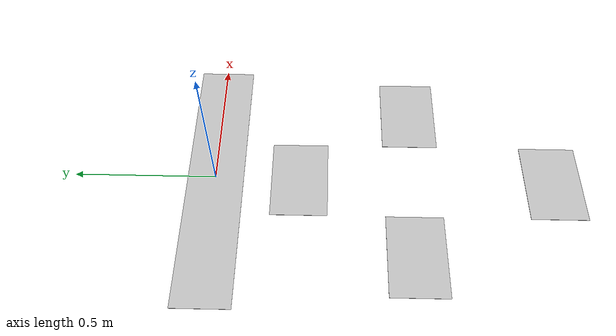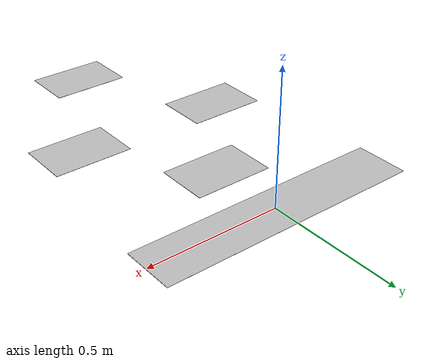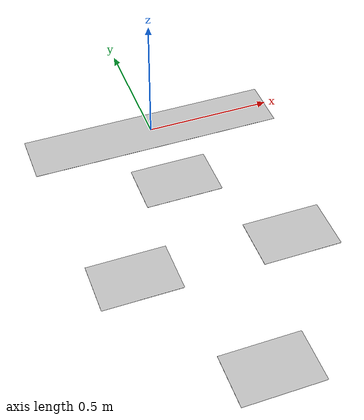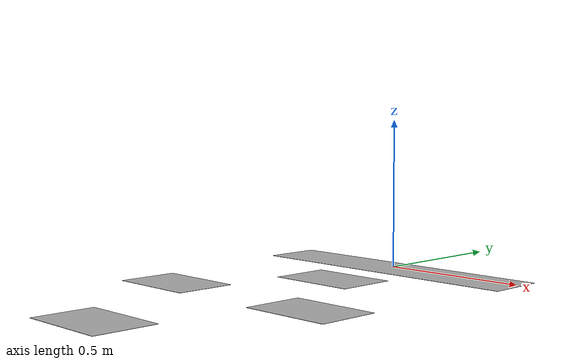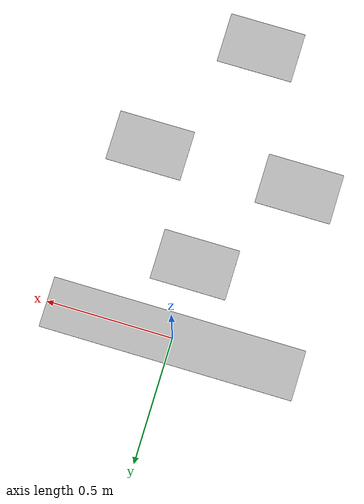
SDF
<?xml version="1.0" ?>
<sdf version="1.5">
  <model name="checkerboard">
    <pose>0 0 -.005 0 0 0</pose>
    <static>true</static>
    <link name="link">

      <collision name="check1-geom">
        <geometry>
          <box>
            <size>1 .2 .001</size>
          </box>
        </geometry>
        <surface>
          <friction>
            <ode>
              <mu>100</mu>
              <mu2>50</mu2>
            </ode>
          </friction>
        </surface>
      </collision>
      <visual name="check1-visual">
        <cast_shadows>false</cast_shadows>
        <geometry>
          <box>
            <size>1 .2 .001</size>
          </box>
        </geometry>
      </visual>

      <collision name="check2-geom">
        <pose>0 -.3 0 0 0 0</pose>
        <geometry>
          <box>
            <size>.3 .2 .001</size>
          </box>
        </geometry>
        <surface>
          <friction>
            <ode>
              <mu>100</mu>
              <mu2>50</mu2>
            </ode>
          </friction>
        </surface>
      </collision>
      <visual name="check2-visual">
        <pose>0 -.3 0 0 0 0</pose>
        <cast_shadows>false</cast_shadows>
        <geometry>
          <box>
            <size>.3 .2 .001</size>
          </box>
        </geometry>
      </visual>

      <collision name="check3-geomA">
        <pose>-.3 -.7 -0.0 0 0 0</pose>
        <geometry>
          <box>
            <size>.3 .2 .001</size>
          </box>
        </geometry>
        <surface>
          <friction>
            <ode>
              <mu>100</mu>
              <mu2>50</mu2>
            </ode>
          </friction>
        </surface>
      </collision>
      <visual name="check3-visualA">
        <pose>-.3 -.7 -.0 0 0 0</pose>
        <cast_shadows>false</cast_shadows>
        <geometry>
          <box>
            <size>.3 .2 .001</size>
          </box>
        </geometry>
      </visual>

      <collision name="check3-geomB">
        <pose>.3 -.7 -0.0 0 0 0</pose>
        <geometry>
          <box>
            <size>.3 .2 .001</size>
          </box>
        </geometry>
        <surface>
          <friction>
            <ode>
              <mu>100</mu>
              <mu2>50</mu2>
            </ode>
          </friction>
        </surface>
      </collision>
      <visual name="check3-visualB">
        <pose>.3 -.7 -.0 0 0 0</pose>
        <cast_shadows>false</cast_shadows>
        <geometry>
          <box>
            <size>.3 .2 .001</size>
          </box>
        </geometry>
      </visual>

      <collision name="check4-geom">
        <pose>0 -1.2 -0 0 0 0</pose>
        <geometry>
          <box>
            <size>.3 .2 .001</size>
          </box>
        </geometry>
        <surface>
          <friction>
            <ode>
              <mu>100</mu>
              <mu2>50</mu2>
            </ode>
          </friction>
        </surface>
      </collision>
      <visual name="check4-visual">
        <pose>0 -1.2 -0 0 0 0</pose>
        <cast_shadows>false</cast_shadows>
        <geometry>
          <box>
            <size>.3 .2 .001</size>
          </box>
        </geometry>
      </visual>

    </link>
  </model>
</sdf>
